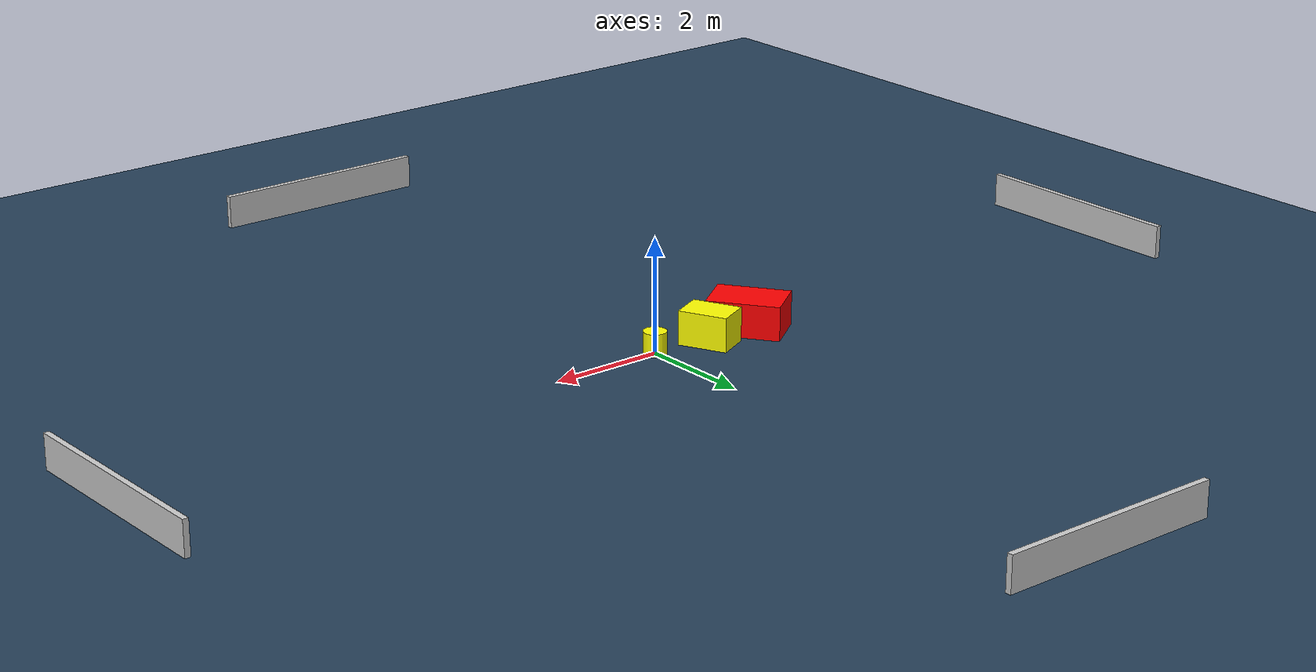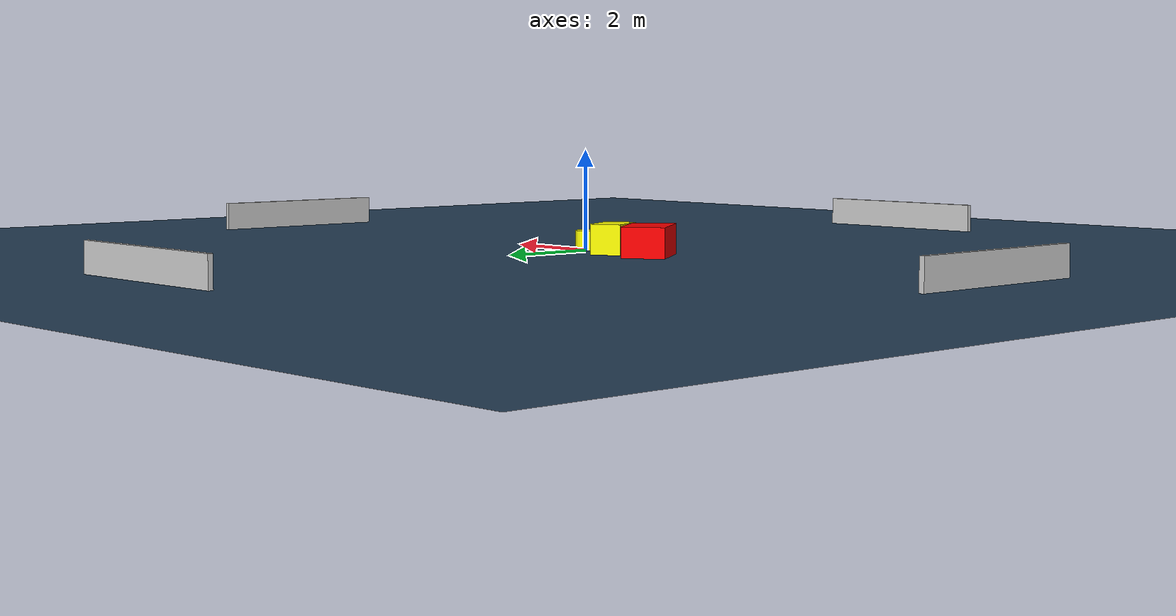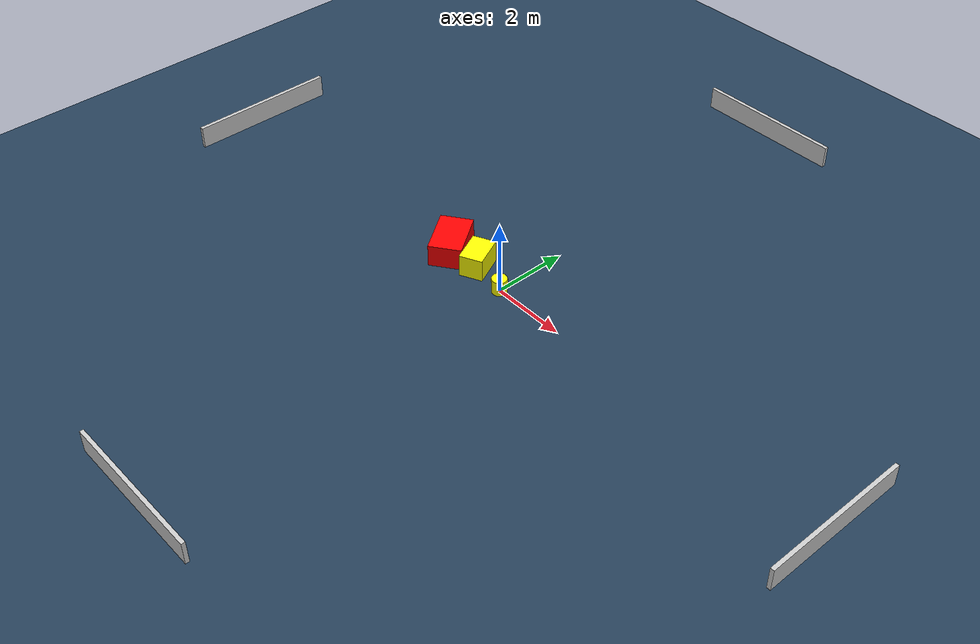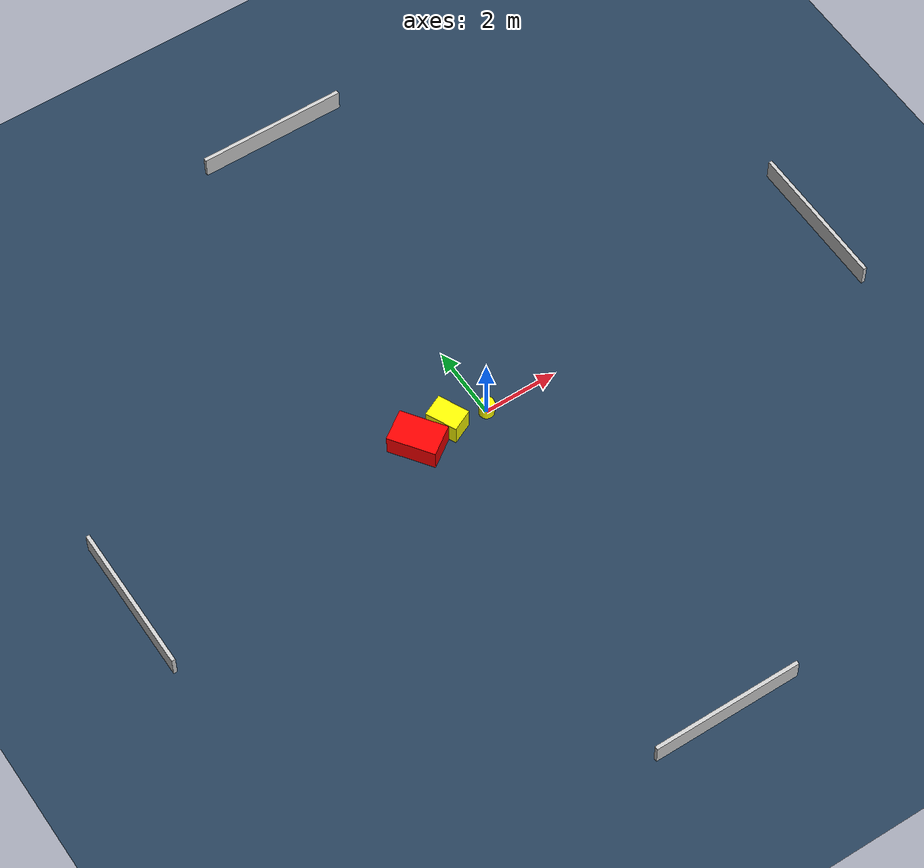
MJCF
<?xml version="1.0" ?>
<mujoco model="generated_environment">
  <option timestep="0.01" integrator="RK4" cone="elliptic"/>
  <default>
    <geom density="1"/>
  </default>
  <asset>
    <texture builtin="gradient" height="3072" name="skybox" rgb1="0.3 0.5 0.7" rgb2="0 0 0" type="skybox" width="512"/>
    <texture builtin="checker" height="300" name="groundplane" rgb1="0.2 0.3 0.4" rgb2="0.1 0.2 0.3" type="2d" width="300"/>
    <material name="groundplane" reflectance="0.2" texrepeat="5 5" texture="groundplane"/>
  </asset>
  <worldbody>
    <light dir="0 0 -1" directional="true" pos="0 0 1.5"/>
    <geom condim="3" friction="0.5 0.005 0.001" material="groundplane" name="floor" pos="0 0 0" size="0 0 0.05" type="plane"/>
    <body name="walls">
      <geom name="wall_1" condim="4" pos="-10.0 0.0 0.3" rgba="0.800000011920929 0.800000011920929 0.800000011920929 1.0" size="0.05 2.0 0.3" type="box"/>
      <geom name="wall_2" condim="4" pos="10.0 0.0 0.3" rgba="0.800000011920929 0.800000011920929 0.800000011920929 1.0" size="0.05 2.0 0.3" type="box"/>
      <geom name="wall_3" condim="4" pos="0.0 -10.0 0.3" rgba="0.800000011920929 0.800000011920929 0.800000011920929 1.0" size="2.0 0.05 0.3" type="box"/>
      <geom name="wall_4" condim="4" pos="0.0 10.0 0.3" rgba="0.800000011920929 0.800000011920929 0.800000011920929 1.0" size="2.0 0.05 0.3" type="box"/>
    </body>
    <body name="robot">
      <joint name="joint_x" type="slide" pos="0 0 0" axis="1 0 0"/>
      <joint name="joint_y" type="slide" pos="0 0 0" axis="0 1 0"/>
      <geom name="robot" type="cylinder" pos="0.0 0.0 0.2" size="0.2 0.2 0.0" mass="5.0" friction="1.0 0.005 0.0001" condim="4" rgba="1.0 1.0 0.0 1.0"/>
    </body>
    <body name="obstacle_1_movable">
      <geom name="obstacle_1_movable" condim="4" pos="-1.016226276116737 0.19019242240809922 0.3" euler="0 0 205.25895357034705" friction="0.0 0.005 0.001" rgba="1.0 1.0 0.0 1.0" size="0.306845089045317 0.43333255556861683 0.3" type="box" mass="0.1"/>
      <joint type="free"/>
    </body>
    <body name="obstacle_2_static">
      <geom name="obstacle_2_static" condim="4" pos="-1.929448780546163 0.11230091688153739 0.3" euler="0 0 215.4099073758142" friction="0.0 0.005 0.001" rgba="1.0 0.0 0.0 1.0" size="0.4292450307230001 0.6381685055469286 0.3" type="box"/>
    </body>
  </worldbody>
  <actuator>
    <motor name="actuator_x" joint="joint_x" gear="1" ctrlrange="-1 1"/>
    <motor name="actuator_y" joint="joint_y" gear="1" ctrlrange="-1 1"/>
  </actuator>
</mujoco>
